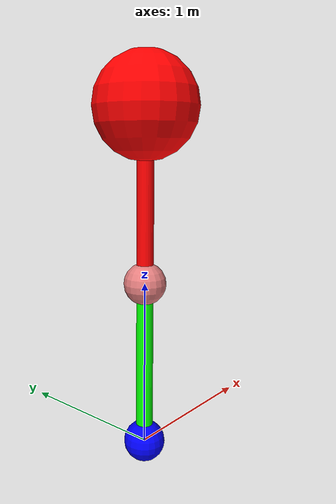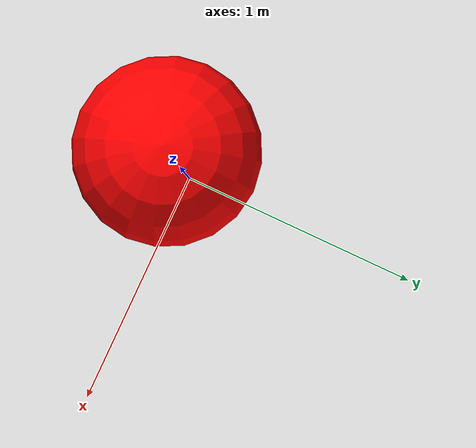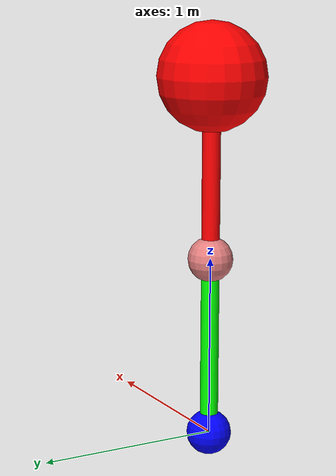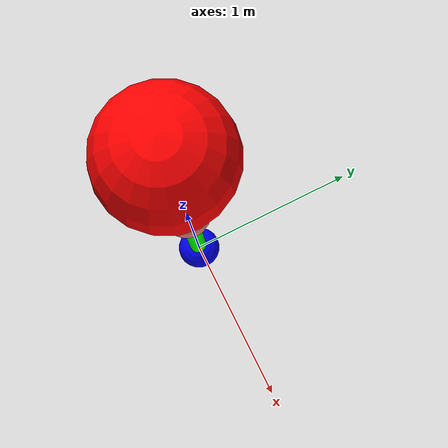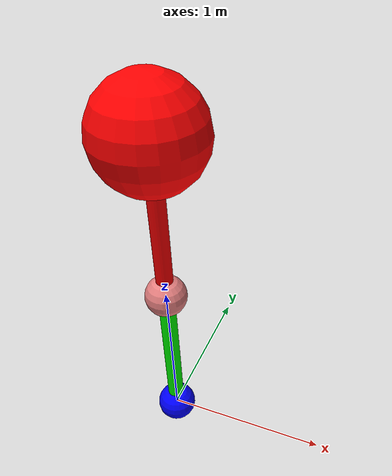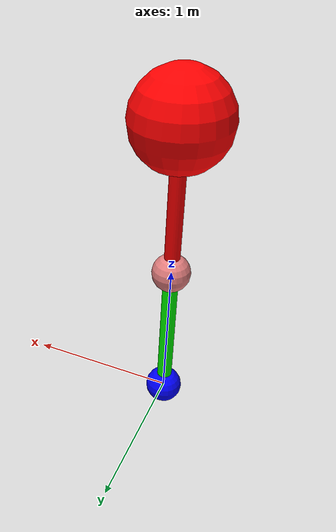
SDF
<?xml version="1.0"?>
<sdf version="1.7">
  <model name="acrobot">
    <!-- This sdf file produces a model with the default parameters documented
         in AcrobotParameters in make_acrobot_plant.h.
         They MUST be kept in sync. -->
    <link name="Link1">
      <!-- The origin of the Link1 frame is defined to be coincident with
           the origin of the x-z plane in the world frame. -->
      <pose>0 0 0 0 0 0</pose>
      <visual name="Link1_visual">
        <pose>0 0 0.5 0 0 0</pose>
        <geometry>
          <cylinder>
            <length>1</length>
            <radius>0.05</radius>
          </cylinder>
        </geometry>
        <material>
          <diffuse>0 1 0 1</diffuse>
        </material>
      </visual>
      <!-- A visual to show the link's pivot point -->
      <visual name="Link1_pivot_visual">
        <!-- Pose of the sphere used for visual in Link1's frame -->
        <geometry>
          <sphere>
            <radius>0.125</radius>
          </sphere>
        </geometry>
        <material>
          <diffuse>0 0 1 1</diffuse>
        </material>
      </visual>
    </link>
    <joint name="ShoulderJoint" type="universal">
      <child>Link1</child>
      <parent>world</parent>
      <axis>
        <xyz expressed_in="__model__">1 0 0</xyz>
        <limit>
          <!-- Drake parses a zero effort joint as an un-actuated joint. -->
          <effort>0</effort>
        </limit>
      </axis>
      <axis2>
        <xyz expressed_in="__model__">0 1 0</xyz>
        <limit>
          <!-- Drake parses a zero effort joint as an un-actuated joint. -->
          <effort>0</effort>
        </limit>
      </axis2>
    </joint>
    <link name="Dummy">
    <!-- The origin of the Link2 frame is defined to be coincident with
           the origin of the x-z plane in the elbow joint frame. -->
      <pose>0 0 1 0 0 0</pose>
      <visual name="Dummy_visual">
        <pose>0 0 0 0 0 0</pose>
        <geometry>
          <sphere>
            <radius>0.125</radius>
          </sphere>
        </geometry>
        <material>
          <diffuse>0.9 0.5 0.5 1</diffuse>
        </material>
      </visual>
    </link>
    <joint name="ElbowJointA" type="revolute">
      <parent>Link1</parent>
      <child>Dummy</child>
      <!-- Pose X_CJ of the joint frame J in the frame C of the child link -->
      <axis>
        <xyz expressed_in="__model__">1 0 0</xyz>
        <limit>
          <!-- No limit provided. sdformat defaults to -1, which we parse as
               an actuated joint. -->
        </limit>
        <dynamics>
          <damping>0.01</damping>
        </dynamics>
      </axis>
    </joint>
    <link name="Link2">
      <!-- The origin of the Link2 frame is defined to be coincident with
           the origin of the x-z plane in the elbow joint frame. -->
      <pose>0 0 1 0 0 0</pose>
      <visual name="Link2_visual">
        <pose>0 0 0.5 0 0 0</pose>
        <geometry>
          <cylinder>
            <length>1</length>
            <radius>0.05</radius>
          </cylinder>
        </geometry>
        <material>
          <diffuse>1 0 0 1</diffuse>
        </material>
      </visual>
    </link>
    <joint name="ElbowJointB" type="revolute">
      <parent>Dummy</parent>
      <child>Link2</child>
      <!-- Pose X_CJ of the joint frame J in the frame C of the child link -->
      <axis>
        <xyz expressed_in="__model__">0 1 0</xyz>
        <limit>
          <!-- No limit provided. sdformat defaults to -1, which we parse as
               an actuated joint. -->
        </limit>
        <dynamics>
          <damping>0.01</damping>
        </dynamics>
      </axis>
    </joint>
    <link name="Body">
      <pose>0 0 2 0 0 0</pose>
      <inertial>
        <pose>0 0 0 0 0 0</pose>
        <mass>0.4</mass>
        <!-- This inertia is based on a solid cylinder with
             radius=1.0 meters and height=2.0 meters. -->
        <!-- For this model we could make izz = 0 however, sdformat will throw
             an exception. -->
        <inertia>
          <ixx>0.0144</ixx>
          <iyy>0.0144</iyy>
          <izz>0.0144</izz>
          <ixy>0</ixy>
          <ixz>0</ixz>
          <iyz>0</iyz>
        </inertia>
      </inertial>
      <visual name="Body_visual">
        <pose>0 0 0 0 0 0</pose>
        <geometry>
          <sphere>
            <radius>0.3</radius>
          </sphere>
        </geometry>
        <material>
          <diffuse>1 0 0 1</diffuse>
        </material>
      </visual>
    </link>
    <joint name="BodyJoint" type="fixed">
      <parent>Link2</parent>
      <child>Body</child>
    </joint>

  </model>
</sdf>
